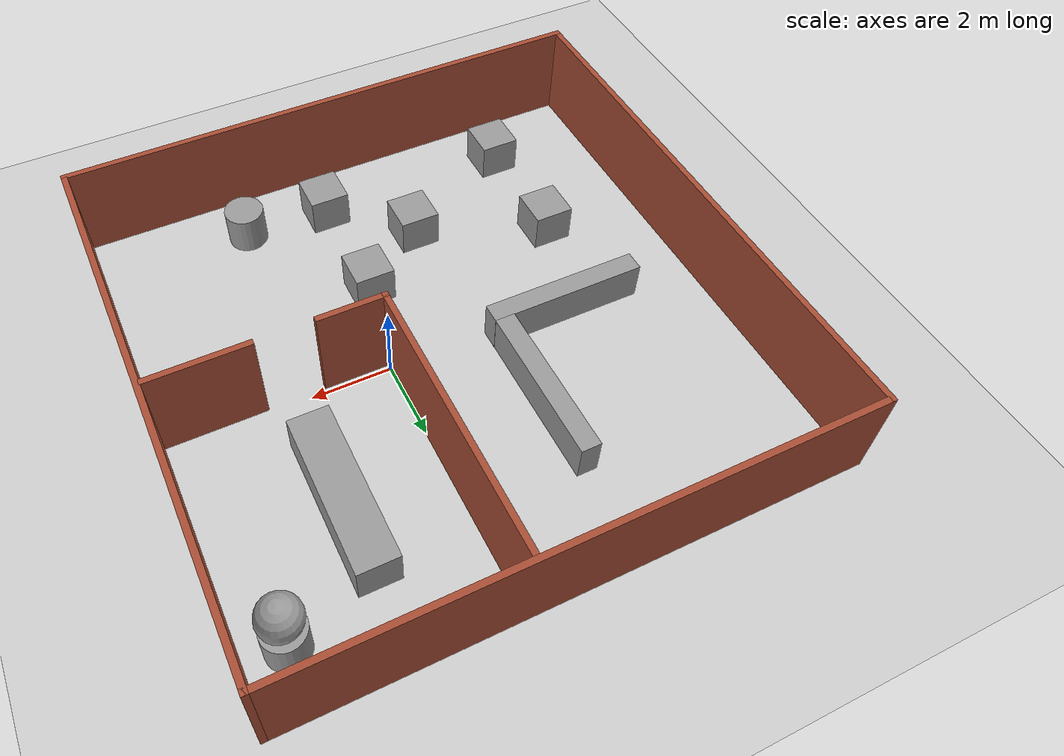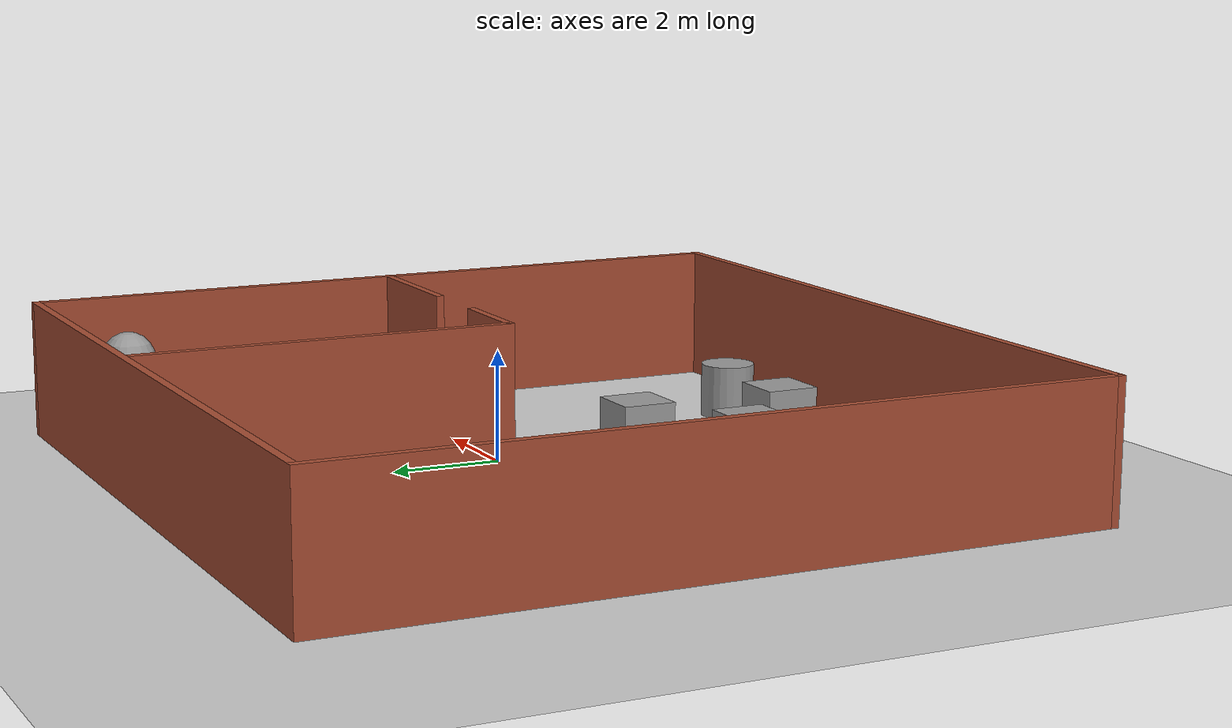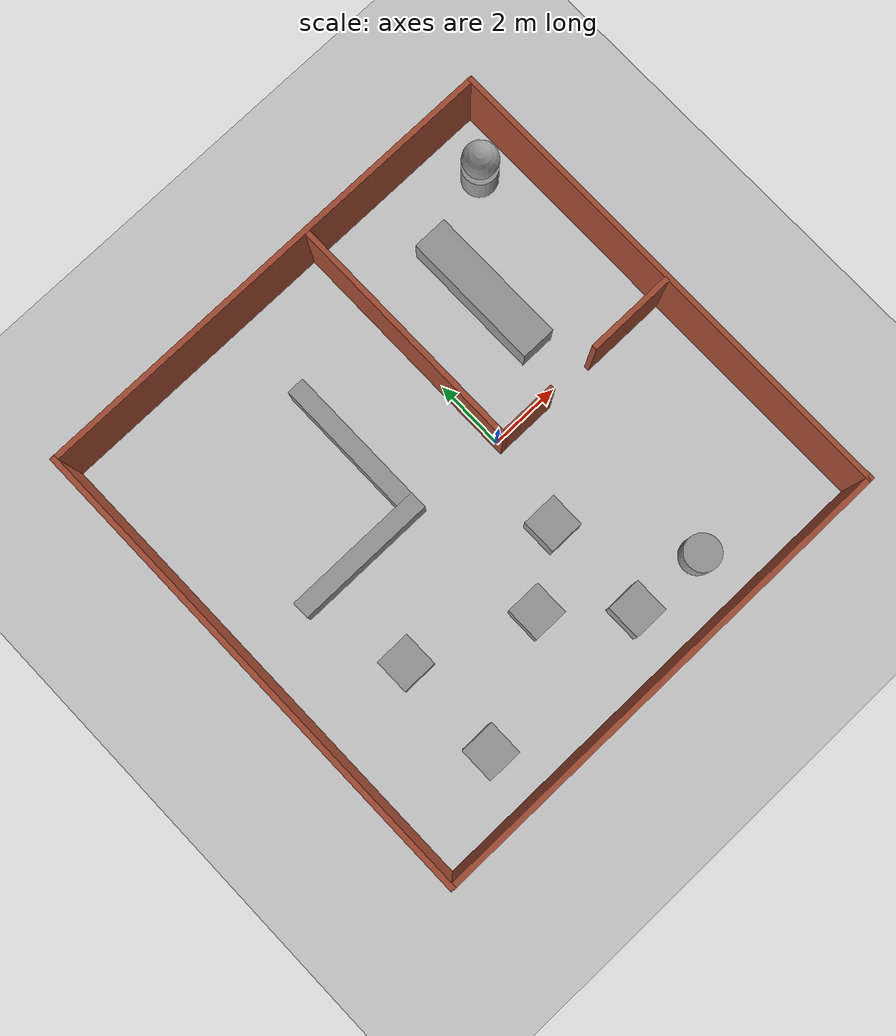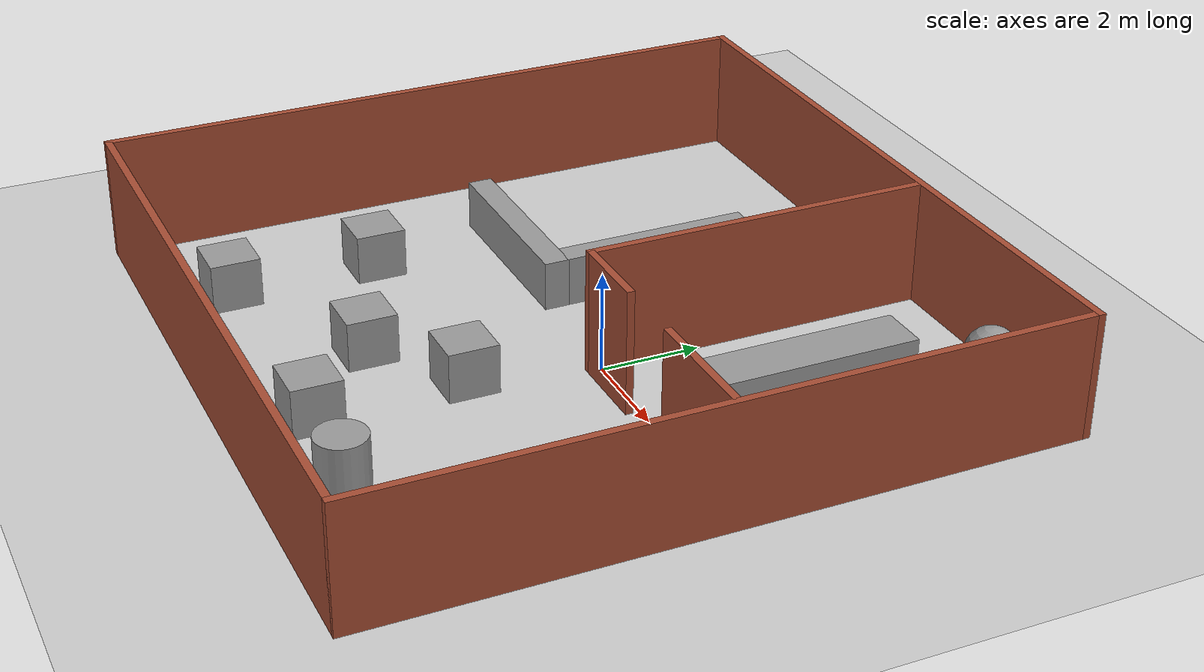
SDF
<sdf version="1.7">
 <world name="default">
  <light name="sun" type="directional">
   <pose>0 0 10 0 -0 0</pose>
   <diffuse>0.8 0.8 0.8 1</diffuse>
   <specular>0.2 0.2 0.2 1</specular>
   <attenuation>
    <range>1000</range>
    <constant>0.9</constant>
    <linear>0.01</linear>
    <quadratic>0.001</quadratic>
   </attenuation>
   <direction>-0.5 0.1 -0.9</direction>
   <spot><inner_angle>0</inner_angle><outer_angle>0</outer_angle><falloff>0</falloff></spot>
  </light>
  <model name="ground_plane">
   <static>1</static>
   <link name="link">
    <collision name="collision">
     <geometry><plane><normal>0 0 1</normal><size>100 100</size></plane></geometry>
     <surface>
      <contact><collide_bitmask>65535</collide_bitmask></contact>
      <friction><ode><mu>100</mu><mu2>50</mu2></ode></friction>
     </surface>
    </collision>
    <visual name="visual">
     <cast_shadows>0</cast_shadows>
     <geometry><plane><normal>0 0 1</normal><size>100 100</size></plane></geometry>
     <material>
      <script><uri>file://media/materials/scripts/gazebo.material</uri><name>Gazebo/Grey</name></script>
     </material>
    </visual>
   </link>
  </model>
  <gravity>0 0 -9.8</gravity>
  <magnetic_field>6e-06 2.3e-05 -4.2e-05</magnetic_field>
  <atmosphere type="adiabatic"/>
  <physics type="ode">
   <max_step_size>0.001</max_step_size>
   <real_time_factor>1</real_time_factor>
   <real_time_update_rate>1000</real_time_update_rate>
  </physics>
  <scene><ambient>0.4 0.4 0.4 1</ambient><background>0.7 0.7 0.7 1</background><shadows>1</shadows></scene>
  <spherical_coordinates>
   <surface_model>EARTH_WGS84</surface_model>
   <latitude_deg>0</latitude_deg>
   <longitude_deg>0</longitude_deg>
   <elevation>0</elevation>
   <heading_deg>0</heading_deg>
  </spherical_coordinates>
  <model name="Room1">
   <pose>-1.36497 -0.129281 0 0 -0 0</pose>
   <link name="Wall_0">
    <collision name="Wall_0_Collision">
     <geometry><box><size>14 0.15 2.5</size></box></geometry>
     <pose>0 0 1.25 0 -0 0</pose>
    </collision>
    <visual name="Wall_0_Visual">
     <pose>0 0 1.25 0 -0 0</pose>
     <geometry><box><size>14 0.15 2.5</size></box></geometry>
     <material>
      <script><uri>file://media/materials/scripts/gazebo.material</uri><name>Gazebo/Bricks</name></script>
      <ambient>1 1 1 1</ambient>
     </material>
     <meta><layer>0</layer></meta>
    </visual>
    <pose>-6.925 -0 0 0 -0 1.5708</pose>
   </link>
   <link name="Wall_10">
    <collision name="Wall_10_Collision">
     <geometry><box><size>7 0.15 2.5</size></box></geometry>
     <pose>0 0 1.25 0 -0 0</pose>
    </collision>
    <visual name="Wall_10_Visual">
     <pose>0 0 1.25 0 -0 0</pose>
     <geometry><box><size>7 0.15 2.5</size></box></geometry>
     <material>
      <script><uri>file://media/materials/scripts/gazebo.material</uri><name>Gazebo/Bricks</name></script>
      <ambient>1 1 1 1</ambient>
     </material>
     <meta><layer>0</layer></meta>
    </visual>
    <pose>1.30781 3.34919 0 0 -0 -1.5708</pose>
   </link>
   <link name="Wall_11">
    <collision name="Wall_11_Collision">
     <geometry><box><size>1.75 0.15 2.5</size></box></geometry>
     <pose>0 0 1.25 0 -0 0</pose>
    </collision>
    <visual name="Wall_11_Visual">
     <pose>0 0 1.25 0 -0 0</pose>
     <geometry><box><size>1.75 0.15 2.5</size></box></geometry>
     <material>
      <script><uri>file://media/materials/scripts/gazebo.material</uri><name>Gazebo/Bricks</name></script>
      <ambient>1 1 1 1</ambient>
     </material>
     <meta><layer>0</layer></meta>
    </visual>
    <pose>2.1078 -0.075805 0 0 -0 0</pose>
   </link>
   <link name="Wall_13">
    <collision name="Wall_13_Collision">
     <geometry><box><size>2.5 0.15 2.5</size></box></geometry>
     <pose>0 0 1.25 0 -0 0</pose>
    </collision>
    <visual name="Wall_13_Visual">
     <pose>0 0 1.25 0 -0 0</pose>
     <geometry><box><size>2.5 0.15 2.5</size></box></geometry>
     <material>
      <script><uri>file://media/materials/scripts/gazebo.material</uri><name>Gazebo/Bricks</name></script>
      <ambient>1 1 1 1</ambient>
     </material>
     <meta><layer>0</layer></meta>
    </visual>
    <pose>5.6289 -0.067553 0 0 -0 0</pose>
   </link>
   <link name="Wall_2">
    <collision name="Wall_2_Collision">
     <geometry><box><size>14 0.15 2.5</size></box></geometry>
     <pose>0 0 1.25 0 -0 0</pose>
    </collision>
    <visual name="Wall_2_Visual">
     <pose>0 0 1.25 0 -0 0</pose>
     <geometry><box><size>14 0.15 2.5</size></box></geometry>
     <material>
      <script><uri>file://media/materials/scripts/gazebo.material</uri><name>Gazebo/Bricks</name></script>
      <ambient>1 1 1 1</ambient>
     </material>
     <meta><layer>0</layer></meta>
    </visual>
    <pose>0 -6.925 0 0 -0 0</pose>
   </link>
   <link name="Wall_3">
    <collision name="Wall_3_Collision">
     <geometry><box><size>14 0.15 2.5</size></box></geometry>
     <pose>0 0 1.25 0 -0 0</pose>
    </collision>
    <visual name="Wall_3_Visual">
     <pose>0 0 1.25 0 -0 0</pose>
     <geometry><box><size>14 0.15 2.5</size></box></geometry>
     <material>
      <script><uri>file://media/materials/scripts/gazebo.material</uri><name>Gazebo/Bricks</name></script>
      <ambient>1 1 1 1</ambient>
     </material>
     <meta><layer>0</layer></meta>
    </visual>
    <pose>6.925 -0 0 0 -0 1.5708</pose>
   </link>
   <link name="Wall_4">
    <collision name="Wall_4_Collision">
     <geometry><box><size>14 0.15 2.5</size></box></geometry>
     <pose>0 0 1.25 0 -0 0</pose>
    </collision>
    <visual name="Wall_4_Visual">
     <pose>0 0 1.25 0 -0 0</pose>
     <geometry><box><size>14 0.15 2.5</size></box></geometry>
     <material>
      <script><uri>file://media/materials/scripts/gazebo.material</uri><name>Gazebo/Bricks</name></script>
      <ambient>1 1 1 1</ambient>
     </material>
     <meta><layer>0</layer></meta>
    </visual>
    <pose>0 6.925 0 0 -0 3.14159</pose>
   </link>
   <static>1</static>
  </model>
  <model name="1">
   <link name="link_0">
    <inertial>
     <mass>700</mass>
     <inertia><ixx>116.667</ixx><ixy>0</ixy><ixz>0</ixz><iyy>116.667</iyy><iyz>0</iyz><izz>116.667</izz></inertia>
    </inertial>
    <pose>-3.7 0.538784 0.5 0 -0 0</pose>
    <visual name="visual">
     <geometry><box><size>4 0.5 1</size></box></geometry>
     <material>
      <lighting>1</lighting>
      <script><uri>file://media/materials/scripts/gazebo.material</uri><name>Gazebo/Grey</name></script>
      <shader type="pixel"><normal_map>__default__</normal_map></shader>
      <ambient>0.3 0.3 0.3 1</ambient>
      <diffuse>0.7 0.7 0.7 1</diffuse>
      <specular>0.01 0.01 0.01 1</specular>
      <emissive>0 0 0 1</emissive>
     </material>
    </visual>
    <collision name="collision">
     <geometry><box><size>4 0.5 1</size></box></geometry>
     <surface>
      <friction>
       <ode><mu>1</mu><mu2>1</mu2><fdir1>0 0 0</fdir1><slip1>0</slip1><slip2>0</slip2></ode>
       <torsional>
        <coefficient>1</coefficient>
        <patch_radius>0</patch_radius>
        <surface_radius>0</surface_radius>
        <use_patch_radius>1</use_patch_radius>
        <ode><slip>0</slip></ode>
       </torsional>
      </friction>
      <bounce><restitution_coefficient>0</restitution_coefficient><threshold>1e+06</threshold></bounce>
      <contact>
       <collide_without_contact>0</collide_without_contact>
       <collide_without_contact_bitmask>1</collide_without_contact_bitmask>
       <collide_bitmask>1</collide_bitmask>
       <ode>
        <soft_cfm>0</soft_cfm>
        <soft_erp>0.2</soft_erp>
        <kp>1e+13</kp>
        <kd>1</kd>
        <max_vel>0.01</max_vel>
        <min_depth>0</min_depth>
       </ode>
       <bullet>
        <split_impulse>1</split_impulse>
        <split_impulse_penetration_threshold>-0.01</split_impulse_penetration_threshold>
        <soft_cfm>0</soft_cfm>
        <soft_erp>0.2</soft_erp>
        <kp>1e+13</kp>
        <kd>1</kd>
       </bullet>
      </contact>
     </surface>
    </collision>
   </link>
   <link name="link_1_clone">
    <inertial>
     <mass>1</mass>
     <inertia>
      <ixx>0.166667</ixx>
      <ixy>0</ixy>
      <ixz>0</ixz>
      <iyy>0.166667</iyy>
      <iyz>0</iyz>
      <izz>0.166667</izz>
     </inertia>
    </inertial>
    <pose>-1.9546 2.77256 0.5 0 -0 0</pose>
    <visual name="visual">
     <geometry><box><size>0.5 4 1</size></box></geometry>
     <material>
      <lighting>1</lighting>
      <script><uri>file://media/materials/scripts/gazebo.material</uri><name>Gazebo/Grey</name></script>
      <shader type="pixel"><normal_map>__default__</normal_map></shader>
      <ambient>0.3 0.3 0.3 1</ambient>
      <diffuse>0.7 0.7 0.7 1</diffuse>
      <specular>0.01 0.01 0.01 1</specular>
      <emissive>0 0 0 1</emissive>
     </material>
    </visual>
    <collision name="collision">
     <geometry><box><size>0.5 4 1</size></box></geometry>
     <surface>
      <friction>
       <ode><mu>1</mu><mu2>1</mu2><fdir1>0 0 0</fdir1><slip1>0</slip1><slip2>0</slip2></ode>
       <torsional>
        <coefficient>1</coefficient>
        <patch_radius>0</patch_radius>
        <surface_radius>0</surface_radius>
        <use_patch_radius>1</use_patch_radius>
        <ode><slip>0</slip></ode>
       </torsional>
      </friction>
      <bounce><restitution_coefficient>0</restitution_coefficient><threshold>1e+06</threshold></bounce>
      <contact>
       <collide_without_contact>0</collide_without_contact>
       <collide_without_contact_bitmask>1</collide_without_contact_bitmask>
       <collide_bitmask>1</collide_bitmask>
       <ode>
        <soft_cfm>0</soft_cfm>
        <soft_erp>0.2</soft_erp>
        <kp>1e+13</kp>
        <kd>1</kd>
        <max_vel>0.01</max_vel>
        <min_depth>0</min_depth>
       </ode>
       <bullet>
        <split_impulse>1</split_impulse>
        <split_impulse_penetration_threshold>-0.01</split_impulse_penetration_threshold>
        <soft_cfm>0</soft_cfm>
        <soft_erp>0.2</soft_erp>
        <kp>1e+13</kp>
        <kd>1</kd>
       </bullet>
      </contact>
     </surface>
    </collision>
   </link>
   <link name="link_2">
    <inertial>
     <mass>1</mass>
     <inertia>
      <ixx>0.166667</ixx>
      <ixy>0</ixy>
      <ixz>0</ixz>
      <iyy>0.166667</iyy>
      <iyz>0</iyz>
      <izz>0.166667</izz>
     </inertia>
    </inertial>
    <pose>-1.49367 -3.50032 0.5 0 -0 0</pose>
    <visual name="visual">
     <geometry><box><size>1 1 1</size></box></geometry>
     <material>
      <lighting>1</lighting>
      <script><uri>file://media/materials/scripts/gazebo.material</uri><name>Gazebo/Grey</name></script>
      <shader type="pixel"/>
     </material>
    </visual>
    <collision name="collision">
     <geometry><box><size>1 1 1</size></box></geometry>
     <surface>
      <friction>
       <ode><mu>1</mu><mu2>1</mu2><fdir1>0 0 0</fdir1><slip1>0</slip1><slip2>0</slip2></ode>
       <torsional>
        <coefficient>1</coefficient>
        <patch_radius>0</patch_radius>
        <surface_radius>0</surface_radius>
        <use_patch_radius>1</use_patch_radius>
        <ode><slip>0</slip></ode>
       </torsional>
      </friction>
      <bounce><restitution_coefficient>0</restitution_coefficient><threshold>1e+06</threshold></bounce>
      <contact>
       <collide_without_contact>0</collide_without_contact>
       <collide_without_contact_bitmask>1</collide_without_contact_bitmask>
       <collide_bitmask>1</collide_bitmask>
       <ode>
        <soft_cfm>0</soft_cfm>
        <soft_erp>0.2</soft_erp>
        <kp>1e+13</kp>
        <kd>1</kd>
        <max_vel>0.01</max_vel>
        <min_depth>0</min_depth>
       </ode>
       <bullet>
        <split_impulse>1</split_impulse>
        <split_impulse_penetration_threshold>-0.01</split_impulse_penetration_threshold>
        <soft_cfm>0</soft_cfm>
        <soft_erp>0.2</soft_erp>
        <kp>1e+13</kp>
        <kd>1</kd>
       </bullet>
      </contact>
     </surface>
    </collision>
   </link>
   <link name="link_3">
    <inertial>
     <mass>1</mass>
     <inertia><ixx>0.145833</ixx><ixy>0</ixy><ixz>0</ixz><iyy>0.145833</iyy><iyz>0</iyz><izz>0.125</izz></inertia>
    </inertial>
    <pose>2.4882 -5.2905 0.5 0 -0 0</pose>
    <visual name="visual">
     <geometry><cylinder><radius>0.5</radius><length>1</length></cylinder></geometry>
     <material>
      <lighting>1</lighting>
      <script><uri>file://media/materials/scripts/gazebo.material</uri><name>Gazebo/Grey</name></script>
      <shader type="pixel"/>
     </material>
    </visual>
    <collision name="collision">
     <geometry><cylinder><radius>0.5</radius><length>1</length></cylinder></geometry>
     <surface>
      <friction>
       <ode><mu>1</mu><mu2>1</mu2><fdir1>0 0 0</fdir1><slip1>0</slip1><slip2>0</slip2></ode>
       <torsional>
        <coefficient>1</coefficient>
        <patch_radius>0</patch_radius>
        <surface_radius>0</surface_radius>
        <use_patch_radius>1</use_patch_radius>
        <ode><slip>0</slip></ode>
       </torsional>
      </friction>
      <bounce><restitution_coefficient>0</restitution_coefficient><threshold>1e+06</threshold></bounce>
      <contact>
       <collide_without_contact>0</collide_without_contact>
       <collide_without_contact_bitmask>1</collide_without_contact_bitmask>
       <collide_bitmask>1</collide_bitmask>
       <ode>
        <soft_cfm>0</soft_cfm>
        <soft_erp>0.2</soft_erp>
        <kp>1e+13</kp>
        <kd>1</kd>
        <max_vel>0.01</max_vel>
        <min_depth>0</min_depth>
       </ode>
       <bullet>
        <split_impulse>1</split_impulse>
        <split_impulse_penetration_threshold>-0.01</split_impulse_penetration_threshold>
        <soft_cfm>0</soft_cfm>
        <soft_erp>0.2</soft_erp>
        <kp>1e+13</kp>
        <kd>1</kd>
       </bullet>
      </contact>
     </surface>
    </collision>
   </link>
   <static>0</static>
   <pose>-0.825772 -0.32302 1e-06 -1e-06 -0 0</pose>
  </model>
  <model name="2">
   <link name="link_0">
    <inertial>
     <mass>1</mass>
     <inertia>
      <ixx>0.166667</ixx>
      <ixy>0</ixy>
      <ixz>0</ixz>
      <iyy>0.166667</iyy>
      <iyz>0</iyz>
      <izz>0.166667</izz>
     </inertia>
    </inertial>
    <pose>2.47591 3.32358 -0.142857 0 -0 0</pose>
    <visual name="visual">
     <geometry><box><size>1 4 1</size></box></geometry>
     <material>
      <lighting>1</lighting>
      <script><uri>file://media/materials/scripts/gazebo.material</uri><name>Gazebo/Grey</name></script>
      <shader type="pixel"><normal_map>__default__</normal_map></shader>
      <ambient>0.3 0.3 0.3 1</ambient>
      <diffuse>0.7 0.7 0.7 1</diffuse>
      <specular>0.01 0.01 0.01 1</specular>
      <emissive>0 0 0 1</emissive>
     </material>
    </visual>
    <collision name="collision">
     <geometry><box><size>1 4 1</size></box></geometry>
     <surface>
      <friction>
       <ode><mu>1</mu><mu2>1</mu2><fdir1>0 0 0</fdir1><slip1>0</slip1><slip2>0</slip2></ode>
       <torsional>
        <coefficient>1</coefficient>
        <patch_radius>0</patch_radius>
        <surface_radius>0</surface_radius>
        <use_patch_radius>1</use_patch_radius>
        <ode><slip>0</slip></ode>
       </torsional>
      </friction>
      <bounce><restitution_coefficient>0</restitution_coefficient><threshold>1e+06</threshold></bounce>
      <contact>
       <collide_without_contact>0</collide_without_contact>
       <collide_without_contact_bitmask>1</collide_without_contact_bitmask>
       <collide_bitmask>1</collide_bitmask>
       <ode>
        <soft_cfm>0</soft_cfm>
        <soft_erp>0.2</soft_erp>
        <kp>1e+13</kp>
        <kd>1</kd>
        <max_vel>0.01</max_vel>
        <min_depth>0</min_depth>
       </ode>
       <bullet>
        <split_impulse>1</split_impulse>
        <split_impulse_penetration_threshold>-0.01</split_impulse_penetration_threshold>
        <soft_cfm>0</soft_cfm>
        <soft_erp>0.2</soft_erp>
        <kp>1e+13</kp>
        <kd>1</kd>
       </bullet>
      </contact>
     </surface>
    </collision>
   </link>
   <link name="link_1">
    <inertial>
     <mass>371.755</mass>
     <inertia><ixx>37.1755</ixx><ixy>0</ixy><ixz>0</ixz><iyy>37.1755</iyy><iyz>0</iyz><izz>37.1755</izz></inertia>
    </inertial>
    <pose>4.62547 5.70313 0.857143 0 -0 0</pose>
    <visual name="visual">
     <geometry><sphere><radius>0.5</radius></sphere></geometry>
     <material>
      <lighting>1</lighting>
      <script><uri>file://media/materials/scripts/gazebo.material</uri><name>Gazebo/Grey</name></script>
      <shader type="pixel"><normal_map>__default__</normal_map></shader>
      <ambient>0.3 0.3 0.3 1</ambient>
      <diffuse>0.7 0.7 0.7 1</diffuse>
      <specular>0.01 0.01 0.01 1</specular>
      <emissive>0 0 0 1</emissive>
     </material>
    </visual>
    <collision name="collision">
     <geometry><sphere><radius>0.5</radius></sphere></geometry>
     <surface>
      <friction>
       <ode><mu>1</mu><mu2>1</mu2><fdir1>0 0 0</fdir1><slip1>0</slip1><slip2>0</slip2></ode>
       <torsional>
        <coefficient>1</coefficient>
        <patch_radius>0</patch_radius>
        <surface_radius>0</surface_radius>
        <use_patch_radius>1</use_patch_radius>
        <ode><slip>0</slip></ode>
       </torsional>
      </friction>
      <bounce><restitution_coefficient>0</restitution_coefficient><threshold>1e+06</threshold></bounce>
      <contact>
       <collide_without_contact>0</collide_without_contact>
       <collide_without_contact_bitmask>1</collide_without_contact_bitmask>
       <collide_bitmask>1</collide_bitmask>
       <ode>
        <soft_cfm>0</soft_cfm>
        <soft_erp>0.2</soft_erp>
        <kp>1e+13</kp>
        <kd>1</kd>
        <max_vel>0.01</max_vel>
        <min_depth>0</min_depth>
       </ode>
       <bullet>
        <split_impulse>1</split_impulse>
        <split_impulse_penetration_threshold>-0.01</split_impulse_penetration_threshold>
        <soft_cfm>0</soft_cfm>
        <soft_erp>0.2</soft_erp>
        <kp>1e+13</kp>
        <kd>1</kd>
       </bullet>
      </contact>
     </surface>
    </collision>
   </link>
   <link name="link_3">
    <inertial>
     <mass>1</mass>
     <inertia><ixx>0.145833</ixx><ixy>0</ixy><ixz>0</ixz><iyy>0.145833</iyy><iyz>0</iyz><izz>0.125</izz></inertia>
    </inertial>
    <pose>4.61977 5.70313 -0.142857 0 -0 0</pose>
    <visual name="visual">
     <geometry><cylinder><radius>0.5</radius><length>1</length></cylinder></geometry>
     <material>
      <lighting>1</lighting>
      <script><uri>file://media/materials/scripts/gazebo.material</uri><name>Gazebo/Grey</name></script>
      <shader type="pixel"><normal_map>__default__</normal_map></shader>
      <ambient>0.3 0.3 0.3 1</ambient>
      <diffuse>0.7 0.7 0.7 1</diffuse>
      <specular>0.01 0.01 0.01 1</specular>
      <emissive>0 0 0 1</emissive>
     </material>
    </visual>
    <collision name="collision">
     <geometry><cylinder><radius>0.5</radius><length>1</length></cylinder></geometry>
     <surface>
      <friction>
       <ode><mu>1</mu><mu2>1</mu2><fdir1>0 0 0</fdir1><slip1>0</slip1><slip2>0</slip2></ode>
       <torsional>
        <coefficient>1</coefficient>
        <patch_radius>0</patch_radius>
        <surface_radius>0</surface_radius>
        <use_patch_radius>1</use_patch_radius>
        <ode><slip>0</slip></ode>
       </torsional>
      </friction>
      <bounce><restitution_coefficient>0</restitution_coefficient><threshold>1e+06</threshold></bounce>
      <contact>
       <collide_without_contact>0</collide_without_contact>
       <collide_without_contact_bitmask>1</collide_without_contact_bitmask>
       <collide_bitmask>1</collide_bitmask>
       <ode>
        <soft_cfm>0</soft_cfm>
        <soft_erp>0.2</soft_erp>
        <kp>1e+13</kp>
        <kd>1</kd>
        <max_vel>0.01</max_vel>
        <min_depth>0</min_depth>
       </ode>
       <bullet>
        <split_impulse>1</split_impulse>
        <split_impulse_penetration_threshold>-0.01</split_impulse_penetration_threshold>
        <soft_cfm>0</soft_cfm>
        <soft_erp>0.2</soft_erp>
        <kp>1e+13</kp>
        <kd>1</kd>
       </bullet>
      </contact>
     </surface>
    </collision>
   </link>
   <link name="link_4">
    <inertial>
     <mass>1</mass>
     <inertia>
      <ixx>0.166667</ixx>
      <ixy>0</ixy>
      <ixz>0</ixz>
      <iyy>0.166667</iyy>
      <iyz>0</iyz>
      <izz>0.166667</izz>
     </inertia>
    </inertial>
    <pose>-5.42348 -5.17677 -0.142857 0 -0 0</pose>
    <visual name="visual">
     <geometry><box><size>1 1 1</size></box></geometry>
     <material>
      <lighting>1</lighting>
      <script><uri>file://media/materials/scripts/gazebo.material</uri><name>Gazebo/Grey</name></script>
      <shader type="pixel"/>
     </material>
    </visual>
    <collision name="collision">
     <geometry><box><size>1 1 1</size></box></geometry>
     <surface>
      <friction>
       <ode><mu>1</mu><mu2>1</mu2><fdir1>0 0 0</fdir1><slip1>0</slip1><slip2>0</slip2></ode>
       <torsional>
        <coefficient>1</coefficient>
        <patch_radius>0</patch_radius>
        <surface_radius>0</surface_radius>
        <use_patch_radius>1</use_patch_radius>
        <ode><slip>0</slip></ode>
       </torsional>
      </friction>
      <bounce><restitution_coefficient>0</restitution_coefficient><threshold>1e+06</threshold></bounce>
      <contact>
       <collide_without_contact>0</collide_without_contact>
       <collide_without_contact_bitmask>1</collide_without_contact_bitmask>
       <collide_bitmask>1</collide_bitmask>
       <ode>
        <soft_cfm>0</soft_cfm>
        <soft_erp>0.2</soft_erp>
        <kp>1e+13</kp>
        <kd>1</kd>
        <max_vel>0.01</max_vel>
        <min_depth>0</min_depth>
       </ode>
       <bullet>
        <split_impulse>1</split_impulse>
        <split_impulse_penetration_threshold>-0.01</split_impulse_penetration_threshold>
        <soft_cfm>0</soft_cfm>
        <soft_erp>0.2</soft_erp>
        <kp>1e+13</kp>
        <kd>1</kd>
       </bullet>
      </contact>
     </surface>
    </collision>
   </link>
   <link name="link_5">
    <inertial>
     <mass>1</mass>
     <inertia>
      <ixx>0.166667</ixx>
      <ixy>0</ixy>
      <ixz>0</ixz>
      <iyy>0.166667</iyy>
      <iyz>0</iyz>
      <izz>0.166667</izz>
     </inertia>
    </inertial>
    <pose>-5.44723 -2.18557 -0.142857 0 -0 0</pose>
    <visual name="visual">
     <geometry><box><size>1 1 1</size></box></geometry>
     <material>
      <lighting>1</lighting>
      <script><uri>file://media/materials/scripts/gazebo.material</uri><name>Gazebo/Grey</name></script>
      <shader type="pixel"/>
     </material>
    </visual>
    <collision name="collision">
     <geometry><box><size>1 1 1</size></box></geometry>
     <surface>
      <friction>
       <ode><mu>1</mu><mu2>1</mu2><fdir1>0 0 0</fdir1><slip1>0</slip1><slip2>0</slip2></ode>
       <torsional>
        <coefficient>1</coefficient>
        <patch_radius>0</patch_radius>
        <surface_radius>0</surface_radius>
        <use_patch_radius>1</use_patch_radius>
        <ode><slip>0</slip></ode>
       </torsional>
      </friction>
      <bounce><restitution_coefficient>0</restitution_coefficient><threshold>1e+06</threshold></bounce>
      <contact>
       <collide_without_contact>0</collide_without_contact>
       <collide_without_contact_bitmask>1</collide_without_contact_bitmask>
       <collide_bitmask>1</collide_bitmask>
       <ode>
        <soft_cfm>0</soft_cfm>
        <soft_erp>0.2</soft_erp>
        <kp>1e+13</kp>
        <kd>1</kd>
        <max_vel>0.01</max_vel>
        <min_depth>0</min_depth>
       </ode>
       <bullet>
        <split_impulse>1</split_impulse>
        <split_impulse_penetration_threshold>-0.01</split_impulse_penetration_threshold>
        <soft_cfm>0</soft_cfm>
        <soft_erp>0.2</soft_erp>
        <kp>1e+13</kp>
        <kd>1</kd>
       </bullet>
      </contact>
     </surface>
    </collision>
   </link>
   <link name="link_6">
    <inertial>
     <mass>1</mass>
     <inertia>
      <ixx>0.166667</ixx>
      <ixy>0</ixy>
      <ixz>0</ixz>
      <iyy>0.166667</iyy>
      <iyz>0</iyz>
      <izz>0.166667</izz>
     </inertia>
    </inertial>
    <pose>-0.440628 -2.20106 -0.142857 0 -0 0</pose>
    <visual name="visual">
     <geometry><box><size>1 1 1</size></box></geometry>
     <material>
      <lighting>1</lighting>
      <script><uri>file://media/materials/scripts/gazebo.material</uri><name>Gazebo/Grey</name></script>
      <shader type="pixel"/>
     </material>
    </visual>
    <collision name="collision">
     <geometry><box><size>1 1 1</size></box></geometry>
     <surface>
      <friction>
       <ode><mu>1</mu><mu2>1</mu2><fdir1>0 0 0</fdir1><slip1>0</slip1><slip2>0</slip2></ode>
       <torsional>
        <coefficient>1</coefficient>
        <patch_radius>0</patch_radius>
        <surface_radius>0</surface_radius>
        <use_patch_radius>1</use_patch_radius>
        <ode><slip>0</slip></ode>
       </torsional>
      </friction>
      <bounce><restitution_coefficient>0</restitution_coefficient><threshold>1e+06</threshold></bounce>
      <contact>
       <collide_without_contact>0</collide_without_contact>
       <collide_without_contact_bitmask>1</collide_without_contact_bitmask>
       <collide_bitmask>1</collide_bitmask>
       <ode>
        <soft_cfm>0</soft_cfm>
        <soft_erp>0.2</soft_erp>
        <kp>1e+13</kp>
        <kd>1</kd>
        <max_vel>0.01</max_vel>
        <min_depth>0</min_depth>
       </ode>
       <bullet>
        <split_impulse>1</split_impulse>
        <split_impulse_penetration_threshold>-0.01</split_impulse_penetration_threshold>
        <soft_cfm>0</soft_cfm>
        <soft_erp>0.2</soft_erp>
        <kp>1e+13</kp>
        <kd>1</kd>
       </bullet>
      </contact>
     </surface>
    </collision>
   </link>
   <link name="link_7">
    <inertial>
     <mass>1</mass>
     <inertia>
      <ixx>0.166667</ixx>
      <ixy>0</ixy>
      <ixz>0</ixz>
      <iyy>0.166667</iyy>
      <iyz>0</iyz>
      <izz>0.166667</izz>
     </inertia>
    </inertial>
    <pose>-0.409827 -5.16643 -0.142857 0 -0 0</pose>
    <visual name="visual">
     <geometry><box><size>1 1 1</size></box></geometry>
     <material>
      <lighting>1</lighting>
      <script><uri>file://media/materials/scripts/gazebo.material</uri><name>Gazebo/Grey</name></script>
      <shader type="pixel"/>
     </material>
    </visual>
    <collision name="collision">
     <geometry><box><size>1 1 1</size></box></geometry>
     <surface>
      <friction>
       <ode><mu>1</mu><mu2>1</mu2><fdir1>0 0 0</fdir1><slip1>0</slip1><slip2>0</slip2></ode>
       <torsional>
        <coefficient>1</coefficient>
        <patch_radius>0</patch_radius>
        <surface_radius>0</surface_radius>
        <use_patch_radius>1</use_patch_radius>
        <ode><slip>0</slip></ode>
       </torsional>
      </friction>
      <bounce><restitution_coefficient>0</restitution_coefficient><threshold>1e+06</threshold></bounce>
      <contact>
       <collide_without_contact>0</collide_without_contact>
       <collide_without_contact_bitmask>1</collide_without_contact_bitmask>
       <collide_bitmask>1</collide_bitmask>
       <ode>
        <soft_cfm>0</soft_cfm>
        <soft_erp>0.2</soft_erp>
        <kp>1e+13</kp>
        <kd>1</kd>
        <max_vel>0.01</max_vel>
        <min_depth>0</min_depth>
       </ode>
       <bullet>
        <split_impulse>1</split_impulse>
        <split_impulse_penetration_threshold>-0.01</split_impulse_penetration_threshold>
        <soft_cfm>0</soft_cfm>
        <soft_erp>0.2</soft_erp>
        <kp>1e+13</kp>
        <kd>1</kd>
       </bullet>
      </contact>
     </surface>
    </collision>
   </link>
   <static>0</static>
   <pose>-0.075913 -0.323581 0.642857 0 -0 0</pose>
  </model>
 </world>
</sdf>
